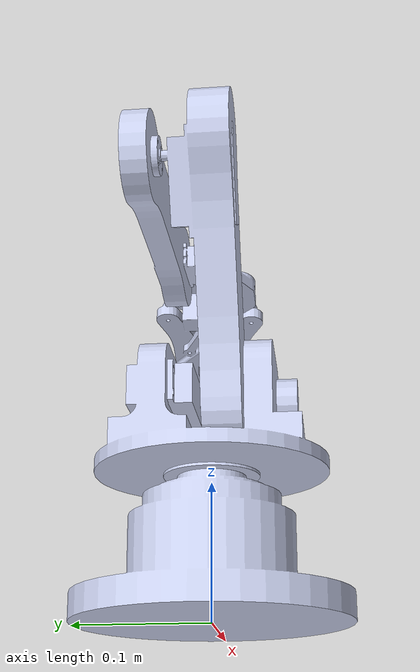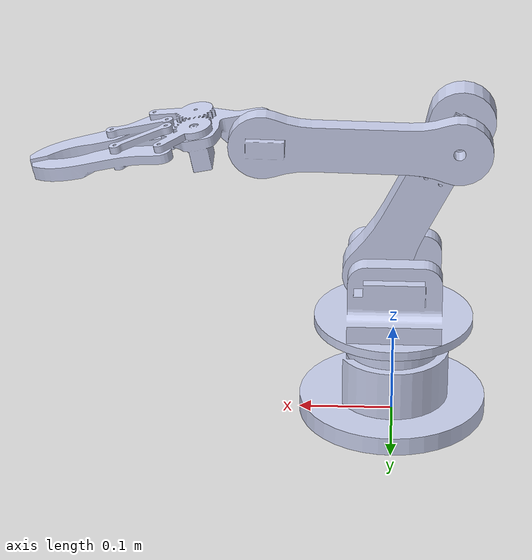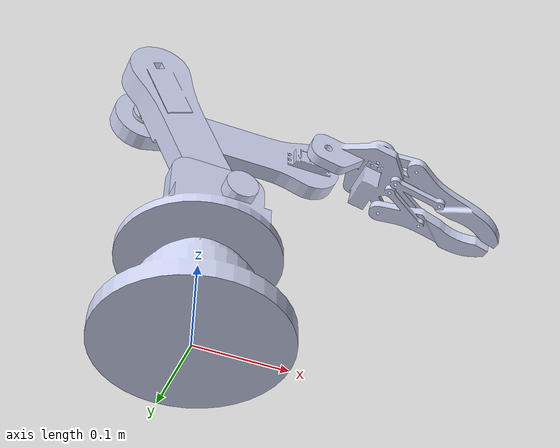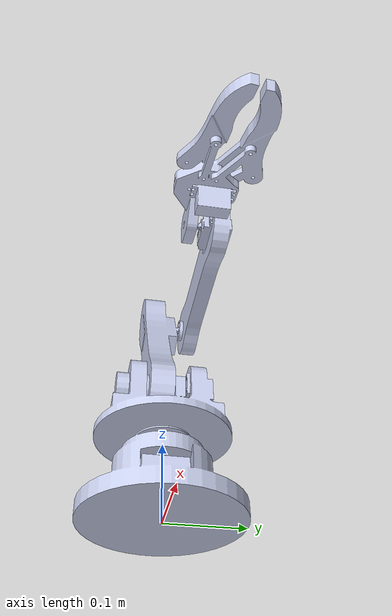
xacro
<?xml version="1.0" encoding="utf-8"?>
<robot name="cobot"
  xmlns:xacro="http://www.ros.org/wiki/xacro">
  <link name="base_link"/>
  <joint name="base_link__base_stand" type="fixed">
    <parent link="base_link"/>
    <child link="base_stand"/>
    <origin xyz="0.0 0.0 0.0" rpy="0.0 0.0 0.0"/>
  </joint>

  <link name="base_stand">
    <inertial>
      <origin xyz="-0.0024988 0.00012827 0.034299" rpy="0 0 0" />
      <mass value="1.2649" />
      <inertia ixx="0.002533" ixy="-7.2003E-06" ixz="8.109E-05" iyy="0.0023931" iyz="-4.1626E-06" izz="0.0041505" />
    </inertial>
    <visual>
      <origin xyz="0 0 0" rpy="0 0 0" />
      <geometry>
        <mesh filename="package://cobot_description/meshes/base_stand.STL" />
      </geometry>
      <material name="">
        <color rgba="0.79216 0.81961 0.93333 1" />
      </material>
    </visual>
    <collision>
      <origin xyz="0 0 0" rpy="0 0 0" />
      <geometry>
        <mesh filename="package://cobot_description/meshes/base_stand.STL" />
      </geometry>
    </collision>
  </link>

  <joint name="base_stand__base" type="revolute">
    <origin xyz="0 0 0.106" rpy="0 0 0" />
    <parent link="base_stand" />
    <child link="base" />
    <axis xyz="0 0 1" />
    <limit lower="-3.1416" upper="3.1416" effort="5" velocity="5" />
    <dynamics damping="10.0" friction="10.0"/>
  </joint>

  <link name="base">
    <inertial>
      <origin xyz="-0.00087897 0.0045493 0.030537" rpy="0 0 0" />
      <mass value="0.69097" />
      <inertia ixx="0.00068689" ixy="3.5558E-06" ixz="1.3086E-05" iyy="0.00097033" iyz="-1.1454E-05" izz="0.0012375" />
    </inertial>
    <visual>
      <origin xyz="0 0 0" rpy="0 0 0" />
      <geometry>
        <mesh filename="package://cobot_description/meshes/base.STL" />
      </geometry>
      <material name="">
        <color rgba="0.79216 0.81961 0.93333 1" />
      </material>
    </visual>
    <collision>
      <origin xyz="0 0 0" rpy="0 0 0" />
      <geometry>
        <mesh filename="package://cobot_description/meshes/base.STL" />
      </geometry>
    </collision>
  </link>

  <joint name="base__shoulder" type="revolute">
    <origin xyz="0.0205 0 0.06" rpy="0 0 0" />
    <parent link="base" />
    <child link="shoulder" />
    <axis xyz="0 1 0" />
    <limit lower="-3.1416" upper="3.1416" effort="5" velocity="5" />
    <dynamics damping="10.0" friction="10.0"/>
  </joint>

  <link name="shoulder">
    <inertial>
      <origin xyz="-0.043702 -0.0089462 0.088598" rpy="0 0 0" />
      <mass value="0.50956" />
      <inertia ixx="0.0022353" ixy="5.0525E-05" ixz="0.00097691" iyy="0.0027432" iyz="-0.00010402" izz="0.00069497" />
    </inertial>
    <visual>
      <origin xyz="0 0 0" rpy="0 0 0" />
      <geometry>
        <mesh filename="package://cobot_description/meshes/shoulder.STL" />
      </geometry>
      <material name="">
        <color rgba="0.79216 0.81961 0.93333 1" />
      </material>
    </visual>
    <collision>
      <origin xyz="0 0 0" rpy="0 0 0" />
      <geometry>
        <mesh filename="package://cobot_description/meshes/shoulder.STL" />
      </geometry>
    </collision>
  </link>

  <joint name="shoulder__elbow" type="revolute">
    <origin xyz="-0.084775 0.025743 0.16726" rpy="0 0 0" />
    <parent link="shoulder" />
    <child link="elbow" />
    <axis xyz="0 1 0" />
    <limit lower="-3.1416" upper="3.1416" effort="5" velocity="5" />
    <dynamics damping="10.0" friction="10.0"/>
  </joint>

  <link name="elbow">
    <inertial>
      <origin xyz="0.10764 0.020329 0.0017657" rpy="0 0 0" />
      <mass value="0.31089" />
      <inertia ixx="9.4078E-05" ixy="1.6899E-07" ixz="-2.6416E-05" iyy="0.0017716" iyz="2.7724E-09" izz="0.001704" />
    </inertial>
    <visual>
      <origin xyz="0 0 0" rpy="0 0 0" />
      <geometry>
        <mesh filename="package://cobot_description/meshes/elbow.STL" />
      </geometry>
      <material name="">
        <color rgba="0.79216 0.81961 0.93333 1" />
      </material>
    </visual>
    <collision>
      <origin xyz="0 0 0" rpy="0 0 0" />
      <geometry>
        <mesh filename="package://cobot_description/meshes/elbow.STL" />
      </geometry>
    </collision>
  </link>

  <joint name="elbow__end_effector" type="revolute">
    <origin xyz="0.20962 0 0.0034385" rpy="0 0 0" />
    <parent link="elbow" />
    <child link="end_effector" />
    <axis xyz="0 1 0" />
    <limit lower="-3.1416" upper="3.1416" effort="5" velocity="5" />
    <dynamics damping="10.0" friction="10.0"/>
  </joint>

  <link name="end_effector">
    <inertial>
      <origin xyz="0.10059 -0.0011654 -0.0095762" rpy="0 0 0" />
      <mass value="0.21582" />
      <inertia ixx="5.0445E-05" ixy="-1.9198E-05" ixz="3.0188E-05" iyy="0.00021644" iyz="2.8871E-06" izz="0.00023311" />
    </inertial>
    <visual>
      <origin xyz="0 0 0" rpy="0 0 0" />
      <geometry>
        <mesh filename="package://cobot_description/meshes/end_effector.STL" />
      </geometry>
      <material name="">
        <color rgba="0.79216 0.81961 0.93333 1" />
      </material>
    </visual>
    <collision>
      <origin xyz="0 0 0" rpy="0 0 0" />
      <geometry>
        <mesh filename="package://cobot_description/meshes/end_effector.STL" />
      </geometry>
    </collision>
  </link>

</robot>
